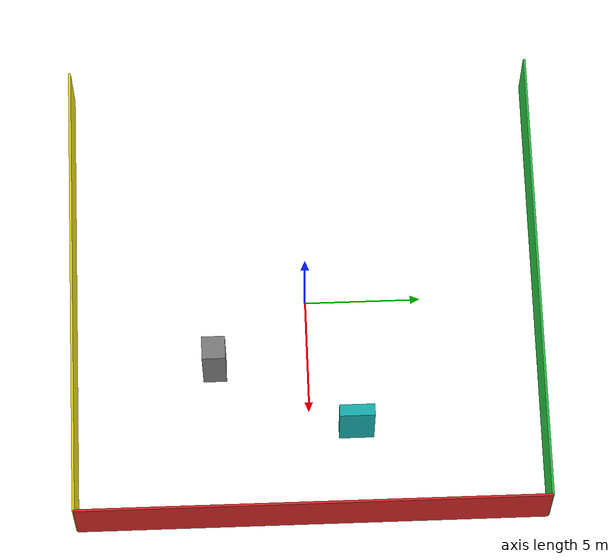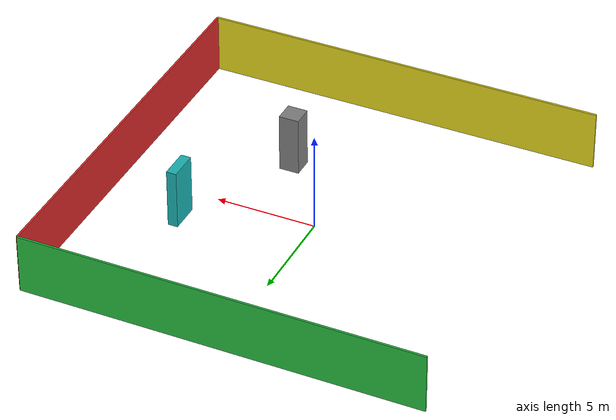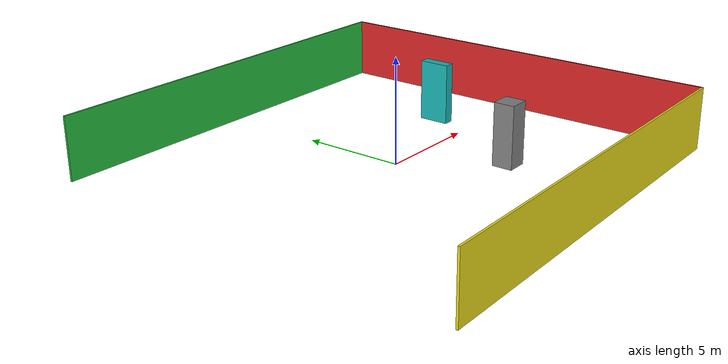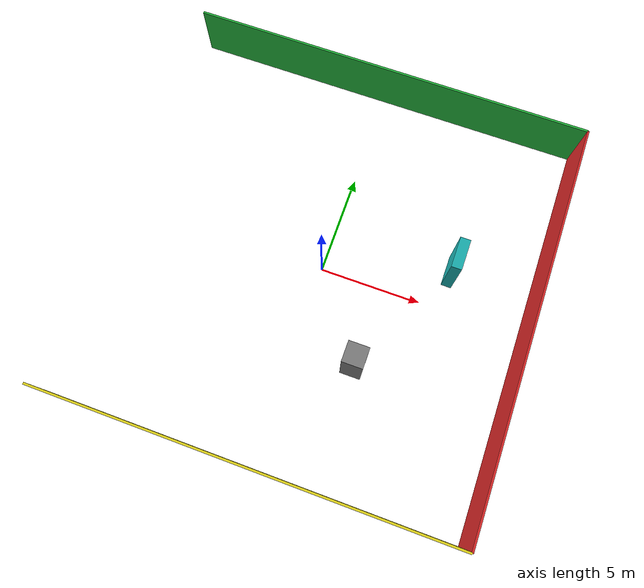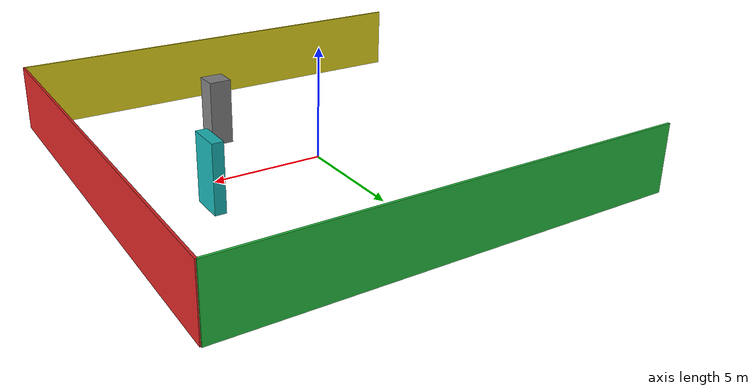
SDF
<sdf version="1.9">
 <world name="indoor_room_obstacles">
  <model name="ground_plane">
   <static>true</static>
   <link name="link">
    <collision name="collision">
     <geometry><plane><normal>0 0 1</normal><size>20 20</size></plane></geometry>
    </collision>
   </link>
  </model>
  <model name="wall_north">
   <static>true</static>
   <pose>10 0 1.5 0 0 0</pose>
   <link name="link">
    <collision name="c"><geometry><box><size>0.1 20 3</size></box></geometry></collision>
    <visual name="v">
     <geometry><box><size>0.1 20 3</size></box></geometry>
     <material><diffuse>0.85 0.15 0.15 1</diffuse><ambient>0.85 0.15 0.15 1</ambient></material>
    </visual>
   </link>
  </model>
  <model name="wall_east">
   <static>true</static>
   <pose>0 10 1.5 0 0 0</pose>
   <link name="link">
    <collision name="c"><geometry><box><size>20 0.1 3</size></box></geometry></collision>
    <visual name="v">
     <geometry><box><size>20 0.1 3</size></box></geometry>
     <material><diffuse>0.15 0.75 0.25 1</diffuse><ambient>0.15 0.75 0.25 1</ambient></material>
    </visual>
   </link>
  </model>
  <model name="wall_west">
   <static>true</static>
   <pose>0 -10 1.5 0 0 0</pose>
   <link name="link">
    <collision name="c"><geometry><box><size>20 0.1 3</size></box></geometry></collision>
    <visual name="v">
     <geometry><box><size>20 0.1 3</size></box></geometry>
     <material><diffuse>0.9 0.85 0.1 1</diffuse><ambient>0.9 0.85 0.1 1</ambient></material>
    </visual>
   </link>
  </model>
  <model name="box_obs_1">
   <static>true</static>
   <pose>3 -4 1.5 0 0 0</pose>
   <link name="link">
    <collision name="c"><geometry><box><size>1.0 1.0 3.0</size></box></geometry></collision>
    <visual name="v">
     <geometry><box><size>1.0 1.0 3.0</size></box></geometry>
     <material><diffuse>0.5 0.5 0.5 1</diffuse><ambient>0.5 0.5 0.5 1</ambient></material>
    </visual>
   </link>
  </model>
  <model name="box_obs_3">
   <static>true</static>
   <pose>6 2 1.5 0 0 0</pose>
   <link name="link">
    <collision name="c"><geometry><box><size>0.5 1.5 3.0</size></box></geometry></collision>
    <visual name="v">
     <geometry><box><size>0.5 1.5 3.0</size></box></geometry>
     <material><diffuse>0.1 0.7 0.7 1</diffuse><ambient>0.1 0.7 0.7 1</ambient></material>
    </visual>
   </link>
  </model>
 </world>
</sdf>
